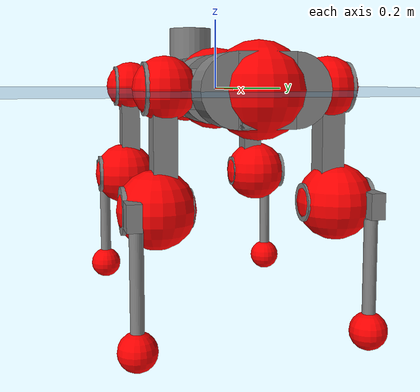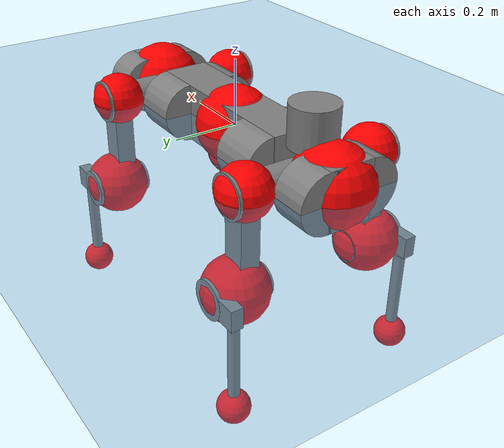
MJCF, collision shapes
<mujoco model="anymal_c">
  <compiler angle="radian" assetdir="assets" balanceinertia="true" inertiafromgeom="false"/>

  <option timestep="0.005" density="1.2" viscosity="2e-05"/>

  <size nkey="1"/>

  <visual>
    <quality shadowsize="8192"/>
    <map shadowclip="0.5"/>
  </visual>

  <default>
    <default class="/">
      <material specular="0" shininess="0.25"/>
      <geom contype="0" conaffinity="0" group="1" solref="-1000 -80"/>
      <site size="0.01 0.005 0.005" group="5"/>
      <general forcelimited="true" forcerange="-80 80" biastype="affine" gainprm="80" biasprm="0 -80 -2"/>
      <default class="anymal_c">
        <joint armature="0.01" damping="0.01" frictionloss="0.1"/>
        <default class="visual">
          <geom type="mesh" group="2"/>
          <default class="visual_zflip"/>
        </default>
        <default class="collision">
          <geom type="cylinder" group="3"/>
          <default class="foot">
            <geom size="0.03 0 0" type="sphere" condim="6" priority="1" friction="0.8 0.02 0.01" solimp="0.015 1 0.03"/>
          </default>
        </default>
      </default>
      <default class="reward_collision_sphere">
        <geom group="5" rgba="1 0 0 1"/>
      </default>
    </default>
  </default>

  <asset>
    <texture type="skybox" colorspace="auto" name="//unnamed_texture_0" builtin="gradient" rgb1="0.95 0.95 0.95" rgb2="0.95 0.95 0.95" width="100" height="600"/>
    <texture type="2d" colorspace="auto" name="texplane" builtin="checker" rgb1="0.345 0.575 0.748" rgb2="0.345 0.575 0.748" markrgb="1 1 1" width="512" height="512"/>
    <texture type="2d" colorspace="linear" name="base" file="base.png"/>
    <texture type="2d" colorspace="linear" name="top_shell" file="top_shell.png"/>
    <texture type="2d" colorspace="linear" name="bottom_shell" file="bottom_shell.png"/>
    <texture type="2d" colorspace="linear" name="remote" file="remote.png"/>
    <texture type="2d" colorspace="linear" name="hatch" file="hatch.png"/>
    <texture type="2d" colorspace="linear" name="handle" file="handle.png"/>
    <texture type="2d" colorspace="linear" name="face" file="face.png"/>
    <texture type="2d" colorspace="linear" name="battery" file="battery.png"/>
    <texture type="2d" colorspace="linear" name="lidar_cage" file="lidar_cage.png"/>
    <texture type="2d" colorspace="linear" name="depth_camera" file="depth_camera.png"/>
    <texture type="2d" colorspace="linear" name="wide_angle_camera" file="wide_angle_camera.png"/>
    <texture type="2d" colorspace="linear" name="lidar" file="lidar.png"/>
    <texture type="2d" colorspace="linear" name="drive" file="drive.png"/>
    <texture type="2d" colorspace="linear" name="hip_l" file="hip_l.png"/>
    <texture type="2d" colorspace="linear" name="shank_l" file="shank_l.png"/>
    <texture type="2d" colorspace="linear" name="foot" file="foot.png"/>
    <texture type="2d" colorspace="linear" name="thigh" file="thigh.png"/>
    <texture type="2d" colorspace="linear" name="shank_r" file="shank_r.png"/>
    <texture type="2d" colorspace="linear" name="hip_r" file="hip_r.png"/>
    <material name="MatPlane" class="/" texture="texplane" texuniform="true" texrepeat="2 2" specular="0.9" shininess="0.5"/>
    <material name="black_plastic" class="/" rgba="0.007 0.007 0.007 1"/>
    <material name="green" class="/" rgba="0.052 0.178 0.033 1"/>
    <material name="red" class="/" rgba="0.178 0.006 0.005 1"/>
    <material name="yellow" class="/" rgba="0.178 0.119 0.006 1"/>
    <material name="lwl" class="/" rgba="0.8 0.8 0.8 1"/>
    <material name="base" class="/" texture="base"/>
    <material name="top_shell" class="/" texture="top_shell"/>
    <material name="bottom_shell" class="/" texture="bottom_shell"/>
    <material name="hip_l" class="/" texture="hip_l"/>
    <material name="thigh" class="/" texture="thigh"/>
    <material name="shank_l" class="/" texture="shank_l"/>
    <material name="foot" class="/" texture="foot"/>
    <material name="hip_r" class="/" texture="hip_r"/>
    <material name="shank" class="/" texture="shank_r"/>
    <material name="hatch" class="/" texture="hatch"/>
    <material name="remote" class="/" texture="remote"/>
    <material name="handle" class="/" texture="handle"/>
    <material name="face" class="/" texture="face"/>
    <material name="depth_camera" class="/" texture="depth_camera"/>
    <material name="wide_angle_camera" class="/" texture="wide_angle_camera"/>
    <material name="battery" class="/" texture="battery"/>
    <material name="lidar_cage" class="/" texture="lidar_cage"/>
    <material name="lidar" class="/" texture="lidar"/>
    <material name="drive" class="/" texture="drive"/>
    <mesh name="base_0" class="/" file="base_0.obj"/>
    <mesh name="base_1" class="/" file="base_1.obj"/>
    <mesh name="base_2" class="/" file="base_2.obj"/>
    <mesh name="base_3" class="/" file="base_3.obj"/>
    <mesh name="base_4" class="/" file="base_4.obj"/>
    <mesh name="base_5" class="/" file="base_5.obj"/>
    <mesh name="top_shell" class="/" file="top_shell.obj"/>
    <mesh name="bottom_shell" class="/" file="bottom_shell.obj"/>
    <mesh name="remote" class="/" file="remote.obj"/>
    <mesh name="handle" class="/" file="handle.obj"/>
    <mesh name="face" class="/" file="face.obj"/>
    <mesh name="wide_angle_camera" class="/" file="wide_angle_camera.obj"/>
    <mesh name="depth_camera" class="/" file="depth_camera.obj"/>
    <mesh name="battery" class="/" file="battery.obj"/>
    <mesh name="lidar_cage" class="/" file="lidar_cage.obj"/>
    <mesh name="lidar" class="/" file="lidar.obj"/>
    <mesh name="drive" class="/" file="drive.obj"/>
    <mesh name="hip_l" class="/" file="hip_l.obj"/>
    <mesh name="thigh" class="/" file="thigh.obj"/>
    <mesh name="shank_l" class="/" file="shank_l.obj"/>
    <mesh name="foot" class="/" file="foot.obj"/>
    <mesh name="hip_r" class="/" file="hip_r.obj"/>
    <mesh name="hatch" class="/" file="hatch.obj"/>
    <mesh name="shank_r" class="/" file="shank_r.obj"/>
  </asset>

  <worldbody>
    <geom name="floor" class="/" size="100 100 0.125" type="plane" group="0" material="MatPlane"/>
    <light name="toplight_shadow" class="/" pos="0 0 5" dir="0.0990148 0.0990148 -0.990148" type="directional" ambient="0.04 0.04 0.04" diffuse="0.55 0.55 0.55" specular="0.12 0.12 0.12"/>
    <light name="toplight_fill" class="/" pos="0 0 5" dir="0.0990148 0.0990148 -0.990148" type="directional" castshadow="false" ambient="0.04 0.04 0.04" diffuse="0.3 0.3 0.3" specular="0.08 0.08 0.08"/>
    <body name="trunk" childclass="anymal_c" pos="-9.71655e-05 -0.0013161 0.000548355" quat="1 -1.3022e-05 -1.78019e-05 -3.09314e-05">
      <inertial pos="0.0014422 -0.00178859 0.0516273" quat="0.5075 0.497141 0.504323 0.49087" mass="18.2887" diaginertia="0.579833 0.521238 0.248172"/>
      <joint name="//unnamed_joint_0" type="free" armature="0" damping="0" frictionloss="0"/>
      <geom name="//unnamed_geom_1" class="visual" material="green" mesh="base_0"/>
      <geom name="//unnamed_geom_2" class="visual" material="yellow" mesh="base_1"/>
      <geom name="//unnamed_geom_3" class="visual" material="red" mesh="base_2"/>
      <geom name="//unnamed_geom_4" class="visual" material="black_plastic" mesh="base_3"/>
      <geom name="//unnamed_geom_5" class="visual" material="lwl" mesh="base_4"/>
      <geom name="//unnamed_geom_6" class="visual" material="base" mesh="base_5"/>
      <geom name="trunk_1" class="collision" size="0.28815 0.0695534 0.0894258" type="box"/>
      <geom name="trunk_2" class="collision" size="0.0894258 0.0720375" pos="0.213955 0.0675533 0" quat="0.707107 0 0.707107 0"/>
      <geom name="trunk_3" class="collision" size="0.0894258 0.0720375" pos="-0.213955 0.0675533 0" quat="0.707107 0 0.707107 0"/>
      <geom name="trunk_4" class="collision" size="0.0894258 0.0720375" pos="0.213955 -0.0675533 0" quat="0.707107 0 0.707107 0"/>
      <geom name="trunk_5" class="collision" size="0.0894258 0.0720375" pos="-0.213955 -0.0675533 0" quat="0.707107 0 0.707107 0"/>
      <geom name="//unnamed_geom_12" class="visual" material="top_shell" mesh="top_shell"/>
      <geom name="//unnamed_geom_13" class="visual" material="bottom_shell" mesh="bottom_shell"/>
      <geom name="//unnamed_geom_14" class="visual" material="remote" mesh="remote"/>
      <geom name="//unnamed_geom_15" class="visual" material="handle" mesh="handle"/>
      <geom name="//unnamed_geom_16" class="visual" pos="0.407745 0 0" quat="1 0 0 0" material="face" mesh="face"/>
      <geom name="trunk_6" class="collision" size="0.0546491 0.0695534 0.0894258" pos="0.461848 0 0" type="box"/>
      <geom name="//unnamed_geom_18" class="collision" size="0.0894258 0.0546491" pos="0.461848 0.0675533 0" quat="0.707107 0 0.707107 0"/>
      <geom name="//unnamed_geom_19" class="collision" size="0.0894258 0.0546491" pos="0.461848 -0.0675533 0" quat="0.707107 0 0.707107 0"/>
      <geom name="//unnamed_geom_20" class="visual" pos="0.454128 0 -0.0305056" quat="0.965926 0 0.258819 0" material="depth_camera" mesh="depth_camera"/>
      <geom name="//unnamed_geom_21" class="visual" pos="0.504639 0 0.0154507" material="wide_angle_camera" mesh="wide_angle_camera"/>
      <geom name="//unnamed_geom_22" class="visual_zflip" pos="-0.407745 0 0" quat="0 0 0 1" material="face" mesh="face"/>
      <geom name="trunk_7" class="collision" size="0.0546491 0.0695534 0.0894258" pos="-0.461848 0 0" quat="0 0 0 1" type="box"/>
      <geom name="//unnamed_geom_24" class="collision" size="0.0894258 0.0546491" pos="-0.461848 -0.0675533 0" quat="0 -0.707107 0 0.707107"/>
      <geom name="//unnamed_geom_25" class="collision" size="0.0894258 0.0546491" pos="-0.461848 0.0675533 0" quat="0 -0.707107 0 0.707107"/>
      <geom name="//unnamed_geom_26" class="visual" pos="-0.454128 0 -0.0305056" quat="0 -0.258819 0 0.965926" material="depth_camera" mesh="depth_camera"/>
      <geom name="//unnamed_geom_27" class="visual_zflip" pos="-0.504639 0 0.0154507" quat="0 0 0 1" material="wide_angle_camera" mesh="wide_angle_camera"/>
      <geom name="//unnamed_geom_28" class="visual" material="battery" mesh="battery"/>
      <geom name="//unnamed_geom_29" class="visual" pos="0 0.0735447 0.0296149" quat="0.683013 -0.183013 0.183013 0.683013" material="depth_camera" mesh="depth_camera"/>
      <geom name="//unnamed_geom_30" class="visual" pos="0 -0.0735447 0.0296149" quat="0.683013 0.183013 0.183013 -0.683013" material="depth_camera" mesh="depth_camera"/>
      <geom name="//unnamed_geom_31" class="visual" pos="-0.358068 0 0.0758602" quat="1 0 0 0" material="lidar_cage" mesh="lidar_cage"/>
      <geom name="trunk_8" class="collision" size="0.0695534 0.0596172" pos="-0.358068 0 0.137787"/>
      <geom name="//unnamed_geom_33" class="visual" pos="-0.358068 -7.32945e-06 0.146766" quat="0.707107 0 0 -0.707107" material="lidar" mesh="lidar"/>
      <geom name="//unnamed_geom_34" class="visual" pos="0.295012 0.100389 -1.15689e-09" quat="0.258819 0.965926 0 0" material="drive" mesh="drive"/>
      <geom name="//unnamed_geom_35" class="visual" pos="0.295012 -0.100389 1.15689e-09" quat="0.258819 -0.965926 0 0" material="drive" mesh="drive"/>
      <geom name="//unnamed_geom_36" class="visual" pos="-0.295012 0.100389 1.15689e-09" quat="0 0 0.965926 -0.258819" material="drive" mesh="drive"/>
      <geom name="//unnamed_geom_37" class="visual" pos="-0.295012 -0.100389 -1.15689e-09" quat="0 0 -0.965926 -0.258819" material="drive" mesh="drive"/>
      <geom name="//unnamed_geom_38" class="visual" pos="0.114109 0 0.0753442" quat="1 0 0 0" material="hatch" mesh="hatch"/>
      <geom name="//unnamed_geom_39" class="reward_collision_sphere" size="0.119234"/>
      <geom name="//unnamed_geom_40" class="reward_collision_sphere" size="0.119234" pos="0.442666 0 0"/>
      <geom name="//unnamed_geom_41" class="reward_collision_sphere" size="0.119234" pos="-0.442666 0 0"/>
      <site name="imu" pos="0.250518 0.007572 0.0412237" size="0.0099362"/>
      <camera name="track" pos="0 -1.93009 0" quat="0.707107 0.707107 0 0" mode="trackcom"/>
      <camera name="ego_camera" pos="0.442666 0 -0.0412845" quat="-0.5 -0.5 0.5 0.5"/>
      <body name="LF_HIP" pos="0.296034 0.103451 0.0021668" quat="0.258333 0.966056 0.000171339 0.000406171">
        <inertial pos="0.0556238 -0.0145018 -0.00904719" quat="-0.126718 0.709319 -0.133538 0.680423" mass="2.6889" diaginertia="0.00538797 0.00404077 0.00387992"/>
        <joint name="LF_HAA" pos="0 0 0" axis="0.999999 0.000385173 0.0010586" range="-0.668333 0.479555" armature="0.00972345" damping="0.00131399" frictionloss="0.102235"/>
        <geom name="//unnamed_geom_42" class="visual" pos="0 -6.80546e-05 1.11779e-05" quat="0.258819 -0.965926 0 0" material="hip_l" mesh="hip_l"/>
        <geom name="//unnamed_geom_43" class="visual" pos="0.0589238 -0.0711769 -0.04159" quat="0.183013 -0.683013 0.683013 0.183013" material="drive" mesh="drive"/>
        <geom name="//unnamed_geom_44" class="collision" size="0.049681 0.0695534" pos="0.0589238 -0.0115418 -0.00712673" quat="-0.353553 -0.612372 0.612372 -0.353553"/>
        <body name="LF_THIGH" pos="0.0593721 -0.0680501 -0.0430711" quat="0.183459 -0.683074 0.682875 0.182849">
          <inertial pos="0.0314417 0.000194069 -0.253484" quat="0.992625 -0.013323 -0.0854692 0.0849258" mass="3.01209" diaginertia="0.0281297 0.0250458 0.00497787"/>
          <joint name="LF_HFE" pos="0 0 0" axis="0.999973 0.00733646 0.000688413" range="-3.15771 3.18351" armature="0.0107341" damping="0.00404413" frictionloss="0.0944133"/>
          <geom name="//unnamed_geom_45" class="visual" pos="0.000371182 5.84895e-07 0" quat="0.707107 0 0 -0.707107" material="thigh" mesh="thigh"/>
          <geom name="//unnamed_geom_46" class="collision" size="0.0645853 0.0397448" pos="0.0393481 0 0" quat="0.5 0.5 -0.5 -0.5"/>
          <geom name="//unnamed_geom_47" class="collision" size="0.0372608 0.0298086 0.140412" pos="0.0295111 0 -0.145852" quat="0.707107 0 0 -0.707107" type="box"/>
          <geom name="//unnamed_geom_48" class="visual" pos="0.0986654 0 -0.294152" quat="1 0 0 0" material="drive" mesh="drive"/>
          <geom name="//unnamed_geom_49" class="collision" size="0.049681 0.0695534" pos="0.0298062 0 -0.294152" quat="0.707107 0 0.707107 0"/>
          <geom name="//unnamed_geom_50" class="reward_collision_sphere" size="0.0794896" pos="0.0245926 0 0"/>
          <body name="LF_SHANK" pos="0.100234 -0.00252893 -0.293892" quat="1 -4.05099e-05 1.88382e-05 -2.24583e-05">
            <inertial pos="0.00582381 -0.0591695 -0.0857529" quat="0.992899 -0.116059 -0.00127746 -0.0260902" mass="0.574872" diaginertia="0.00922269 0.00796259 0.00127167"/>
            <joint name="LF_KFE" pos="0 0 0" axis="0.999999 -0.0011284 0.000856917" range="-3.18947 3.13448" armature="0.00983703" damping="0.0100239" frictionloss="0.0990472"/>
            <geom name="//unnamed_geom_51" class="visual" pos="0.000121034 0.000645361 0" quat="0.707107 0 0 -0.707107" material="shank_l" mesh="shank_l"/>
            <geom name="LF_kfe_act" class="collision" size="0.0596172 0.0198724" pos="0.019674 0 0" quat="0.5 0.5 -0.5 -0.5"/>
            <geom name="//unnamed_geom_53" class="collision" size="0.0571322 0.0335347 0.0188788" pos="0.019674 -0.0554892 0" quat="0.5 0.5 -0.5 -0.5" type="box"/>
            <geom name="//unnamed_geom_54" class="visual" pos="0.0128373 -0.0846679 -0.348823" quat="0.382683 0 0 -0.92388" material="foot" mesh="foot"/>
            <geom name="LF_calf" class="collision" size="0.0173884 0.140351" pos="0.0128373 -0.0848758 -0.174411" quat="0.707107 0 0 -0.707107"/>
            <geom name="LF_foot" class="foot" size="0.0302027" pos="0.0128373 -0.0848758 -0.3256" quat="0.707107 0 0 -0.707107"/>
            <geom name="//unnamed_geom_57" class="reward_collision_sphere" size="0.099362" pos="-0.0491851 0 0"/>
            <geom name="//unnamed_geom_58" class="reward_collision_sphere" size="0.049681" pos="0.0128373 -0.0848758 -0.3256"/>
            <site name="LF_foot" class="foot" pos="0.0128373 -0.0848758 -0.3256" quat="0.707107 0 0 -0.707107" size="0.0099362"/>
          </body>
        </body>
      </body>
      <body name="RF_HIP" pos="0.295865 -0.10111 0.00125633" quat="0.258656 -0.965969 -4.70446e-05 -0.000175835">
        <inertial pos="0.0569137 0.0143085 -0.00935288" quat="0.136472 0.67955 0.126362 0.709662" mass="2.67895" diaginertia="0.00550285 0.00401376 0.00395157"/>
        <joint name="RF_HAA" pos="0 0 0" axis="0.999989 0.00377771 -0.00289387" range="-0.497322 0.726461" armature="0.00940891" damping="0.00434478" frictionloss="0.0942053"/>
        <geom name="//unnamed_geom_59" class="visual" pos="0 6.8054e-05 1.11779e-05" quat="0.258819 0.965926 0 0" material="hip_r" mesh="hip_r"/>
        <geom name="//unnamed_geom_60" class="visual" pos="0.0589238 0.0711769 -0.04159" quat="0.183013 0.683013 0.683013 -0.183013" material="drive" mesh="drive"/>
        <geom name="//unnamed_geom_61" class="collision" size="0.049681 0.0695534" pos="0.0589238 0.0115418 -0.00712673" quat="-0.353553 0.612372 0.612372 0.353553"/>
        <body name="RF_THIGH" pos="0.0614759 0.0725598 -0.0436725" quat="0.183031 0.682884 0.683151 -0.182958">
          <inertial pos="0.0309645 -0.00255517 -0.25372" quat="0.992848 -0.00505427 -0.0802969 0.0881999" mass="3.10804" diaginertia="0.0286398 0.0255743 0.00506417"/>
          <joint name="RF_HFE" pos="0 0 0" axis="0.999994 0.00194158 0.00286648" range="-3.18928 3.13862" armature="0.0101801" damping="0.00558615" frictionloss="0.0995538"/>
          <geom name="//unnamed_geom_62" class="visual" pos="0.000371182 5.84895e-07 0" quat="0.707107 0 0 -0.707107" material="thigh" mesh="thigh"/>
          <geom name="//unnamed_geom_63" class="collision" size="0.0645853 0.0397448" pos="0.0393481 0 0" quat="0.5 0.5 0.5 0.5"/>
          <geom name="//unnamed_geom_64" class="collision" size="0.0372608 0.0298086 0.140412" pos="0.0295111 0 -0.145852" quat="0.707107 0 0 0.707107" type="box"/>
          <geom name="//unnamed_geom_65" class="visual" pos="0.0986654 0 -0.294152" quat="1 0 0 0" material="drive" mesh="drive"/>
          <geom name="//unnamed_geom_66" class="collision" size="0.049681 0.0695534" pos="0.0298062 0 -0.294152" quat="0.707107 0 0.707107 0"/>
          <geom name="//unnamed_geom_67" class="reward_collision_sphere" size="0.0794896" pos="0.0245926 0 0"/>
          <body name="RF_SHANK" pos="0.0963482 0.000310097 -0.294544" quat="1 0.000161409 0.000228657 0.000923777">
            <inertial pos="0.00459707 0.0593817 -0.0822853" quat="0.99286 0.116638 -0.000438535 0.0249767" mass="0.580841" diaginertia="0.00928304 0.00774821 0.00129311"/>
            <joint name="RF_KFE" pos="0 0 0" axis="0.999909 -0.00907627 -0.0100081" range="-3.14657 3.13432" armature="0.0110267" damping="0.0206613" frictionloss="0.090256"/>
            <geom name="//unnamed_geom_68" class="visual" pos="0.000121034 -0.000645359 0" quat="0.707107 0 0 0.707107" material="shank" mesh="shank_r"/>
            <geom name="RF_kfe_act" class="collision" size="0.0596172 0.0198724" pos="0.019674 0 0" quat="0.5 0.5 0.5 0.5"/>
            <geom name="//unnamed_geom_70" class="collision" size="0.0571322 0.0335347 0.0188788" pos="0.019674 0.0554892 0" quat="0.5 0.5 0.5 0.5" type="box"/>
            <geom name="//unnamed_geom_71" class="visual" pos="0.0128373 0.0846679 -0.348823" quat="0.382683 0 0 0.92388" material="foot" mesh="foot"/>
            <geom name="RF_calf" class="collision" size="0.0173884 0.140351" pos="0.0128373 0.0848758 -0.174411" quat="0.707107 0 0 0.707107"/>
            <geom name="RF_foot" class="foot" size="0.0292" pos="0.0128373 0.0848758 -0.3256" quat="0.707107 0 0 0.707107"/>
            <geom name="//unnamed_geom_74" class="reward_collision_sphere" size="0.099362" pos="-0.0491851 0 0"/>
            <geom name="//unnamed_geom_75" class="reward_collision_sphere" size="0.049681" pos="0.0128373 0.0848758 -0.3256"/>
            <site name="RF_foot" class="foot" pos="0.0128373 0.0848758 -0.3256" quat="0.707107 0 0 0.707107" size="0.0099362"/>
          </body>
        </body>
      </body>
      <body name="LH_HIP" pos="-0.29488 0.100142 -0.00136533" quat="-0.000110986 -0.000410882 0.965837 -0.259151">
        <inertial pos="0.0556099 0.0128716 -0.00888759" quat="0.130958 0.681149 0.127347 0.708992" mass="2.66443" diaginertia="0.00535202 0.00407054 0.00381489"/>
        <joint name="LH_HAA" pos="0 0 0" axis="0.99999 -0.00377558 -0.00228621" stiffness="0.0023242" range="-0.503438 0.741101" armature="0.00997006" damping="0.0125113" frictionloss="0.0975685"/>
        <geom name="//unnamed_geom_76" class="visual" pos="0 6.8054e-05 1.11779e-05" quat="-0.258819 -0.965926 0 0" material="hip_r" mesh="hip_r"/>
        <geom name="//unnamed_geom_77" class="visual" pos="0.0589238 0.0711769 -0.04159" quat="0.183013 0.683013 0.683013 -0.183013" material="drive" mesh="drive"/>
        <geom name="//unnamed_geom_78" class="collision" size="0.049681 0.0695534" pos="0.0589238 0.0115418 -0.00712673" quat="-0.353553 0.612372 0.612372 0.353553"/>
        <body name="LH_THIGH" pos="0.0575972 0.0693879 -0.0452226" quat="0.183038 0.682885 0.683163 -0.182903">
          <inertial pos="0.0302392 -0.000463984 -0.25575" quat="0.992774 -0.00519849 -0.0807701 0.0885955" mass="3.06802" diaginertia="0.0278108 0.0244326 0.00480521"/>
          <joint name="LH_HFE" pos="0 0 0" axis="0.999998 -5.2506e-06 -0.00221223" range="-3.17063 3.14389" armature="0.01037" damping="0" frictionloss="0.0967311"/>
          <geom name="//unnamed_geom_79" class="visual" pos="0.000371182 5.84895e-07 0" quat="0.707107 0 0 -0.707107" material="thigh" mesh="thigh"/>
          <geom name="//unnamed_geom_80" class="collision" size="0.0645853 0.0397448" pos="0.0393481 0 0" quat="0.5 0.5 -0.5 -0.5"/>
          <geom name="//unnamed_geom_81" class="collision" size="0.0372608 0.0298086 0.140412" pos="0.0295111 0 -0.145852" quat="0.707107 0 0 -0.707107" type="box"/>
          <geom name="//unnamed_geom_82" class="visual" pos="0.0986654 0 -0.294152" quat="1 0 0 0" material="drive" mesh="drive"/>
          <geom name="//unnamed_geom_83" class="collision" size="0.049681 0.0695534" pos="0.0298062 0 -0.294152" quat="0.707107 0 0.707107 0"/>
          <geom name="//unnamed_geom_84" class="reward_collision_sphere" size="0.0794896" pos="0.0245926 0 0"/>
          <body name="LH_SHANK" pos="0.0982653 -0.00273592 -0.295805" quat="1 -0.000127841 -9.06075e-05 0.000175753">
            <inertial pos="0.00481981 0.0591223 -0.0831932" quat="0.992965 0.115606 -0.00278504 0.02546" mass="0.579444" diaginertia="0.00960138 0.00770517 0.00131153"/>
            <joint name="LH_KFE" pos="0 0 0" axis="0.999947 6.78226e-05 -0.0102587" range="-3.09565 3.11561" armature="0.00991723" damping="0.0112956" frictionloss="0.10097"/>
            <geom name="//unnamed_geom_85" class="visual" pos="0.000121034 -0.000645359 0" quat="-0.707107 0 0 -0.707107" material="shank" mesh="shank_r"/>
            <geom name="LH_kfe_act" class="collision" size="0.0596172 0.0198724" pos="0.019674 0 0" quat="0.5 0.5 -0.5 -0.5"/>
            <geom name="//unnamed_geom_87" class="collision" size="0.0571322 0.0335347 0.0188788" pos="0.019674 0.0554892 0" quat="0.5 0.5 -0.5 -0.5" type="box"/>
            <geom name="//unnamed_geom_88" class="visual" pos="0.0128373 0.0846679 -0.348823" quat="-0.382683 0 0 -0.92388" material="foot" mesh="foot"/>
            <geom name="LH_calf" class="collision" size="0.0173884 0.140351" pos="0.0128373 0.0848758 -0.174411" quat="0.707107 0 0 -0.707107"/>
            <geom name="LH_foot" class="foot" size="0.030404" pos="0.0128373 0.0848758 -0.3256" quat="0.707107 0 0 -0.707107"/>
            <geom name="//unnamed_geom_91" class="reward_collision_sphere" size="0.099362" pos="-0.0491851 0 0"/>
            <geom name="//unnamed_geom_92" class="reward_collision_sphere" size="0.049681" pos="0.0128373 0.0848758 -0.3256"/>
            <site name="LH_foot" class="foot" pos="0.0128373 0.0848758 -0.3256" quat="0.707107 0 0 -0.707107" size="0.0099362"/>
          </body>
        </body>
      </body>
      <body name="RH_HIP" pos="-0.29584 -0.09946 0.00123883" quat="0.000556728 0.000429505 -0.965876 -0.259003">
        <inertial pos="0.054861 -0.013072 -0.00933415" quat="-0.127121 0.707506 -0.137502 0.681446" mass="2.73348" diaginertia="0.00546965 0.00406164 0.00395839"/>
        <joint name="RH_HAA" pos="0 0 0" axis="0.999964 -0.00171376 0.00836834" range="-0.727806 0.448658" armature="0.00998058" damping="0.0122843" frictionloss="0.101779"/>
        <geom name="//unnamed_geom_93" class="visual" pos="0 -6.80546e-05 1.11779e-05" quat="-0.258819 0.965926 0 0" material="hip_l" mesh="hip_l"/>
        <geom name="//unnamed_geom_94" class="visual" pos="0.0589238 -0.0711769 -0.04159" quat="-0.183013 0.683013 -0.683013 -0.183013" material="drive" mesh="drive"/>
        <geom name="//unnamed_geom_95" class="collision" size="0.049681 0.0695534" pos="0.0589238 -0.0115418 -0.00712673" quat="0.353553 0.612372 -0.612372 0.353553"/>
        <body name="RH_THIGH" pos="0.0591275 -0.0686966 -0.0436347" quat="-0.183979 0.682417 -0.683376 -0.182909">
          <inertial pos="0.0304619 -0.00223274 -0.253189" quat="0.992995 -0.00574498 -0.0834675 0.0834304" mass="3.01785" diaginertia="0.0280211 0.0250012 0.0048974"/>
          <joint name="RH_HFE" pos="0 0 0" axis="0.999946 0.00386859 0.00961719" range="-3.14694 3.14487" armature="0.0097212" damping="0.00873866" frictionloss="0.0983035"/>
          <geom name="//unnamed_geom_96" class="visual" pos="0.000371182 5.84895e-07 0" quat="0.707107 0 0 -0.707107" material="thigh" mesh="thigh"/>
          <geom name="//unnamed_geom_97" class="collision" size="0.0645853 0.0397448" pos="0.0393481 0 0" quat="0.5 0.5 0.5 0.5"/>
          <geom name="//unnamed_geom_98" class="collision" size="0.0372608 0.0298086 0.140412" pos="0.0295111 0 -0.145852" quat="0.707107 0 0 0.707107" type="box"/>
          <geom name="//unnamed_geom_99" class="visual" pos="0.0986654 0 -0.294152" quat="1 0 0 0" material="drive" mesh="drive"/>
          <geom name="//unnamed_geom_100" class="collision" size="0.049681 0.0695534" pos="0.0298062 0 -0.294152" quat="0.707107 0 0.707107 0"/>
          <geom name="//unnamed_geom_101" class="reward_collision_sphere" size="0.0794896" pos="0.0245926 0 0"/>
          <body name="RH_SHANK" pos="0.0955874 -8.54716e-05 -0.293657" quat="1 -8.19868e-05 -0.000435747 -0.000112666">
            <inertial pos="0.00800679 -0.0589028 -0.082318" quat="0.992696 -0.118229 -0.00494709 -0.0235101" mass="0.571372" diaginertia="0.00957761 0.00779627 0.00129801"/>
            <joint name="RH_KFE" pos="0 0 0" axis="0.999984 0.00279423 0.00485189" range="-3.15503 3.18051" armature="0.00889171" damping="0.00812706" frictionloss="0.0977926"/>
            <geom name="//unnamed_geom_102" class="visual" pos="0.000121034 0.000645361 0" quat="0.707107 0 0 -0.707107" material="shank_l" mesh="shank_l"/>
            <geom name="RH_kfe_act" class="collision" size="0.0596172 0.0198724" pos="0.019674 0 0" quat="0.5 0.5 0.5 0.5"/>
            <geom name="//unnamed_geom_104" class="collision" size="0.0571322 0.0335347 0.0188788" pos="0.019674 -0.0554892 0" quat="0.5 0.5 0.5 0.5" type="box"/>
            <geom name="//unnamed_geom_105" class="visual" pos="0.0128373 -0.0846679 -0.348823" quat="0.382683 0 0 -0.92388" material="foot" mesh="foot"/>
            <geom name="RH_calf" class="collision" size="0.0173884 0.140351" pos="0.0128373 -0.0848758 -0.174411" quat="0.707107 0 0 0.707107"/>
            <geom name="RH_foot" class="foot" size="0.0295094" pos="0.0128373 -0.0848758 -0.3256" quat="0.707107 0 0 0.707107"/>
            <geom name="//unnamed_geom_108" class="reward_collision_sphere" size="0.099362" pos="-0.0491851 0 0"/>
            <geom name="//unnamed_geom_109" class="reward_collision_sphere" size="0.049681" pos="0.0128373 -0.0848758 -0.3256"/>
            <site name="RH_foot" class="foot" pos="0.0128373 -0.0848758 -0.3256" quat="0.707107 0 0 0.707107" size="0.0099362"/>
          </body>
        </body>
      </body>
    </body>
  </worldbody>

  <contact>
    <pair class="/" geom1="floor" geom2="LF_foot" name="//unnamed_contact_0"/>
    <pair class="/" geom1="floor" geom2="RF_foot" name="//unnamed_contact_1"/>
    <pair class="/" geom1="floor" geom2="LH_foot" name="//unnamed_contact_2"/>
    <pair class="/" geom1="floor" geom2="RH_foot" name="//unnamed_contact_3"/>
  </contact>

  <actuator>
    <general name="LF_HAA" class="/" joint="LF_HAA" forcerange="-87.6266 87.6266" gainprm="83.6167" biasprm="0 -83.6167 -1.97161"/>
    <general name="LF_HFE" class="/" joint="LF_HFE" forcerange="-78.8445 78.8445" gainprm="83.6167" biasprm="0 -83.6167 -1.97161"/>
    <general name="LF_KFE" class="/" joint="LF_KFE" forcerange="-81.629 81.629" gainprm="83.6167" biasprm="0 -83.6167 -1.97161"/>
    <general name="RF_HAA" class="/" joint="RF_HAA" forcerange="-87.0546 87.0546" gainprm="83.6167" biasprm="0 -83.6167 -1.97161"/>
    <general name="RF_HFE" class="/" joint="RF_HFE" forcerange="-88.0787 88.0787" gainprm="83.6167" biasprm="0 -83.6167 -1.97161"/>
    <general name="RF_KFE" class="/" joint="RF_KFE" forcerange="-81.9512 81.9512" gainprm="83.6167" biasprm="0 -83.6167 -1.97161"/>
    <general name="LH_HAA" class="/" joint="LH_HAA" forcerange="-80.1923 80.1923" gainprm="83.6167" biasprm="0 -83.6167 -1.97161"/>
    <general name="LH_HFE" class="/" joint="LH_HFE" forcerange="-78.2193 78.2193" gainprm="83.6167" biasprm="0 -83.6167 -1.97161"/>
    <general name="LH_KFE" class="/" joint="LH_KFE" forcerange="-81.8109 81.8109" gainprm="83.6167" biasprm="0 -83.6167 -1.97161"/>
    <general name="RH_HAA" class="/" joint="RH_HAA" forcerange="-72.7272 72.7272" gainprm="83.6167" biasprm="0 -83.6167 -1.97161"/>
    <general name="RH_HFE" class="/" joint="RH_HFE" forcerange="-79.0643 79.0643" gainprm="83.6167" biasprm="0 -83.6167 -1.97161"/>
    <general name="RH_KFE" class="/" joint="RH_KFE" forcerange="-79.8924 79.8924" gainprm="83.6167" biasprm="0 -83.6167 -1.97161"/>
  </actuator>

  <sensor>
    <gyro site="imu" name="imu_angular_velocity"/>
    <velocimeter site="imu" name="imu_linear_velocity"/>
    <framelinvel objtype="site" objname="LF_foot" name="LF_foot_global_linear_velocity"/>
    <framelinvel objtype="site" objname="RF_foot" name="RF_foot_global_linear_velocity"/>
    <framelinvel objtype="site" objname="LH_foot" name="LH_foot_global_linear_velocity"/>
    <framelinvel objtype="site" objname="RH_foot" name="RH_foot_global_linear_velocity"/>
  </sensor>

  <keyframe>
    <key name="home" qpos="0 0 0.55 1 0 0 0 0 0.4 -0.8 0 -0.4 0.8 0 -0.4 0.8 0 0.4 -0.8"/>
  </keyframe>
</mujoco>
